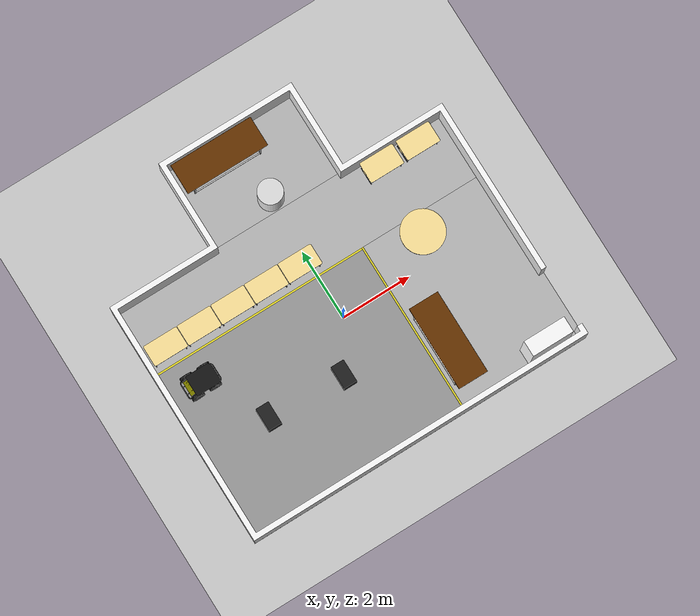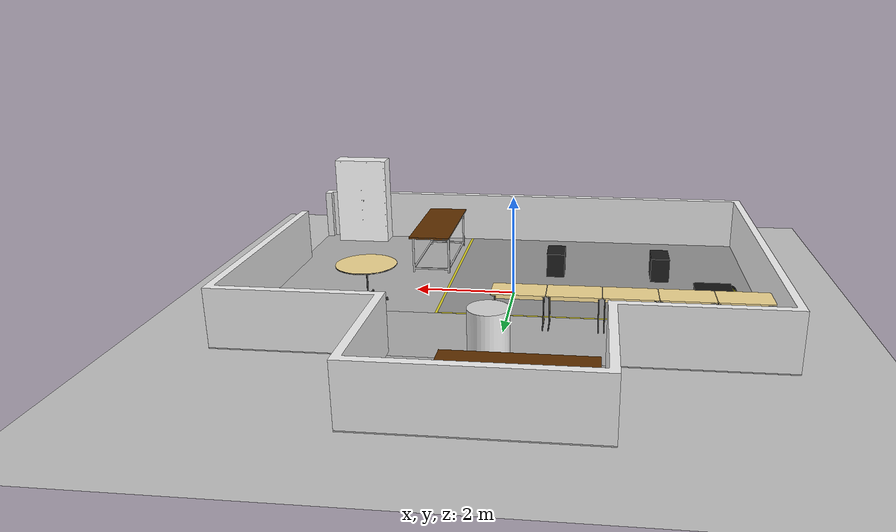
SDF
<sdf version="1.7">
 <world name="default">
  <light name="sun" type="directional">
   <cast_shadows>0</cast_shadows>
   <pose>0 0 10 0 -0 0</pose>
   <diffuse>0.8 0.8 0.8 1</diffuse>
   <specular>0.1 0.1 0.1 1</specular>
   <attenuation>
    <range>1000</range>
    <constant>0.9</constant>
    <linear>0.01</linear>
    <quadratic>0.001</quadratic>
   </attenuation>
   <direction>-0.5 0.5 -1</direction>
   <spot><inner_angle>0</inner_angle><outer_angle>0</outer_angle><falloff>0</falloff></spot>
  </light>
  <model name="ground_plane">
   <static>1</static>
   <link name="link">
    <collision name="collision">
     <geometry><plane><normal>0 0 1</normal><size>100 100</size></plane></geometry>
     <surface><friction><ode><mu>1</mu><mu2>2</mu2></ode></friction></surface>
    </collision>
    <visual name="visual">
     <cast_shadows>0</cast_shadows>
     <geometry><plane><normal>0 0 1</normal><size>100 100</size></plane></geometry>
     <material>
      <script><uri>file://media/materials/scripts/gazebo.material</uri><name>Gazebo/Grey</name></script>
     </material>
    </visual>
   </link>
  </model>
  <gravity>0 0 -9.8</gravity>
  <magnetic_field>6e-06 2.3e-05 -4.2e-05</magnetic_field>
  <atmosphere type="adiabatic"/>
  <physics name="default_physics" default="0" type="ode">
   <max_step_size>0.01</max_step_size>
   <real_time_factor>1</real_time_factor>
   <real_time_update_rate>100</real_time_update_rate>
  </physics>
  <scene><ambient>0.4 0.4 0.4 1</ambient><background>0.7 0.7 0.7 1</background><shadows>0</shadows></scene>
  <spherical_coordinates>
   <surface_model>EARTH_WGS84</surface_model>
   <latitude_deg>0</latitude_deg>
   <longitude_deg>0</longitude_deg>
   <elevation>0</elevation>
   <heading_deg>0</heading_deg>
  </spherical_coordinates>
  <model name="lar_floor">
   <pose>0 -0.25 0 0 -0 0</pose>
   <frame name="floor::__model__" attached_to="floor::floor">
    <pose relative_to="__model__">0 0 0 0 -0 0</pose>
   </frame>
   <link name="floor::floor">
    <pose relative_to="floor::__model__">0 0 0 0 -0 0</pose>
    <visual name="visual_1">
     <pose>3.2 -0.985 0.01 0 -0 0</pose>
     <geometry><box><size>3.6 5.03 0.02</size></box></geometry>
     <material>
      <script>
       <uri>model://lar_floor/materials/scripts/lar_floor.material</uri>
       <name>lar_floor/visual_1</name>
      </script>
     </material>
     <cast_shadows>0</cast_shadows>
    </visual>
    <visual name="visual_2">
     <pose>0 4.75 0.01 0 -0 0</pose>
     <geometry><box><size>4 2.5 0.02</size></box></geometry>
     <material>
      <script>
       <uri>model://lar_floor/materials/scripts/lar_floor.material</uri>
       <name>lar_floor/visual_2</name>
      </script>
     </material>
     <cast_shadows>0</cast_shadows>
    </visual>
    <visual name="visual_3">
     <pose>-1.825 -1.01 0.01 0 -0 0</pose>
     <geometry><box><size>6.35 4.98 0.02</size></box></geometry>
     <material>
      <script><uri>file://media/materials/scripts/gazebo.material</uri><name>Gazebo/Grey</name></script>
     </material>
     <cast_shadows>0</cast_shadows>
    </visual>
    <visual name="visual_4">
     <pose>1.375 -0.985 0.01 0 -0 0</pose>
     <geometry><box><size>0.05 5.03 0.02</size></box></geometry>
     <material>
      <script><uri>file://media/materials/scripts/gazebo.material</uri><name>Gazebo/DarkYellow</name></script>
     </material>
     <cast_shadows>0</cast_shadows>
    </visual>
    <visual name="visual_5">
     <pose>-1.825 1.505 0.01 0 -0 0</pose>
     <geometry><box><size>6.35 0.05 0.02</size></box></geometry>
     <material>
      <script><uri>file://media/materials/scripts/gazebo.material</uri><name>Gazebo/DarkYellow</name></script>
     </material>
     <cast_shadows>0</cast_shadows>
    </visual>
    <visual name="visual_6">
     <pose>0 2.515 0.01 0 -0 0</pose>
     <geometry><box><size>10 1.97 0.02</size></box></geometry>
     <material>
      <script>
       <uri>model://lar_floor/materials/scripts/lar_floor.material</uri>
       <name>lar_floor/visual_6</name>
      </script>
     </material>
     <cast_shadows>0</cast_shadows>
    </visual>
    <collision name="collision_1">
     <pose>0 0 0.01 0 -0 0</pose>
     <geometry><box><size>10 7 0.1</size></box></geometry>
     <surface><friction><ode><mu>1000000</mu><mu2>1000000</mu2></ode></friction></surface>
    </collision>
    <collision name="collision_2">
     <pose>0 4.75 0.01 0 -0 0</pose>
     <geometry><box><size>4 2.5 0.1</size></box></geometry>
     <surface><friction><ode><mu>1000000</mu><mu2>1000000</mu2></ode></friction></surface>
    </collision>
   </link>
   <static>1</static>
  </model>
  <model name="lar_walls">
   <pose>0 1 0 0 -0 0</pose>
   <frame name="walls::__model__" attached_to="walls::walls">
    <pose relative_to="__model__">0 0 0 0 -0 0</pose>
   </frame>
   <link name="walls::walls">
    <pose relative_to="walls::__model__">0 0 1.52 0 -0 0</pose>
    <inertial>
     <inertia><ixx>1</ixx><ixy>0</ixy><ixz>0</ixz><iyy>1</iyy><iyz>0</iyz><izz>1</izz></inertia>
     <mass>2000</mass>
    </inertial>
    <visual name="visual">
     <geometry><mesh><uri>model://lar_walls/meshes/lar_walls.dae</uri></mesh></geometry>
     <cast_shadows>0</cast_shadows>
     <material><shader type="vertex"><normal_map>__default__</normal_map></shader></material>
    </visual>
    <collision name="collisions">
     <geometry><mesh><uri>model://lar_walls/meshes/lar_walls.dae</uri></mesh></geometry>
     <surface>
      <friction>
       <ode><mu>1</mu><mu2>1</mu2><fdir1>0 0 0</fdir1><slip1>0</slip1><slip2>0</slip2></ode>
       <torsional>
        <coefficient>1</coefficient>
        <patch_radius>0</patch_radius>
        <surface_radius>0</surface_radius>
        <use_patch_radius>1</use_patch_radius>
        <ode><slip>0</slip></ode>
       </torsional>
      </friction>
      <bounce><restitution_coefficient>0</restitution_coefficient><threshold>1e+06</threshold></bounce>
      <contact>
       <collide_without_contact>0</collide_without_contact>
       <collide_without_contact_bitmask>1</collide_without_contact_bitmask>
       <collide_bitmask>1</collide_bitmask>
       <ode>
        <soft_cfm>0</soft_cfm>
        <soft_erp>0.2</soft_erp>
        <kp>1e+13</kp>
        <kd>1</kd>
        <max_vel>0.01</max_vel>
        <min_depth>0</min_depth>
       </ode>
       <bullet>
        <split_impulse>1</split_impulse>
        <split_impulse_penetration_threshold>-0.01</split_impulse_penetration_threshold>
        <soft_cfm>0</soft_cfm>
        <soft_erp>0.2</soft_erp>
        <kp>1e+13</kp>
        <kd>1</kd>
       </bullet>
      </contact>
     </surface>
    </collision>
   </link>
   <static>1</static>
  </model>
  <model name="lar_shelf">
   <pose>4 -3.35 -0 0 -0 1.57068</pose>
   <frame name="shelf::__model__" attached_to="shelf::shelf">
    <pose relative_to="__model__">0 0 0 0 -0 0</pose>
   </frame>
   <link name="shelf::shelf">
    <pose relative_to="shelf::__model__">0 0 1.01 0 -0 0</pose>
    <inertial>
     <inertia><ixx>1</ixx><ixy>0</ixy><ixz>0</ixz><iyy>1</iyy><iyz>0</iyz><izz>1</izz></inertia>
     <mass>20</mass>
    </inertial>
    <visual name="visual">
     <geometry><mesh><uri>model://lar_shelf/meshes/lar_shelf.dae</uri></mesh></geometry>
     <cast_shadows>0</cast_shadows>
     <material>
      <lighting>1</lighting>
      <ambient>1 1 1 1</ambient>
      <diffuse>1 1 1 1</diffuse>
      <specular>1 1 1 1</specular>
      <emissive>0 0 0 1</emissive>
      <shader type="vertex"><normal_map>__default__</normal_map></shader>
     </material>
    </visual>
    <collision name="collisions">
     <geometry><box><size>0.454 1.2 1.98</size></box></geometry>
     <surface>
      <friction>
       <ode><mu>1</mu><mu2>1</mu2><fdir1>0 0 0</fdir1><slip1>0</slip1><slip2>0</slip2></ode>
       <torsional>
        <coefficient>1</coefficient>
        <patch_radius>0</patch_radius>
        <surface_radius>0</surface_radius>
        <use_patch_radius>1</use_patch_radius>
        <ode><slip>0</slip></ode>
       </torsional>
      </friction>
      <bounce><restitution_coefficient>0</restitution_coefficient><threshold>1e+06</threshold></bounce>
      <contact>
       <collide_without_contact>0</collide_without_contact>
       <collide_without_contact_bitmask>1</collide_without_contact_bitmask>
       <collide_bitmask>1</collide_bitmask>
       <ode>
        <soft_cfm>0</soft_cfm>
        <soft_erp>0.2</soft_erp>
        <kp>1e+13</kp>
        <kd>1</kd>
        <max_vel>0.01</max_vel>
        <min_depth>0</min_depth>
       </ode>
       <bullet>
        <split_impulse>1</split_impulse>
        <split_impulse_penetration_threshold>-0.01</split_impulse_penetration_threshold>
        <soft_cfm>0</soft_cfm>
        <soft_erp>0.2</soft_erp>
        <kp>1e+13</kp>
        <kd>1</kd>
       </bullet>
      </contact>
     </surface>
    </collision>
   </link>
   <static>1</static>
  </model>
  <model name="lar_table_great_0">
   <pose>1.9 -2 0 0 -0 0</pose>
   <frame name="great_table_0::__model__" attached_to="great_table_0::great_table">
    <pose relative_to="__model__">0 0 0 0 -0 0</pose>
   </frame>
   <link name="great_table_0::great_table">
    <pose relative_to="great_table_0::__model__">0 0 0.445 0 -0 0</pose>
    <inertial>
     <inertia><ixx>1</ixx><ixy>0</ixy><ixz>0</ixz><iyy>1</iyy><iyz>0</iyz><izz>1</izz></inertia>
     <mass>25</mass>
    </inertial>
    <visual name="visual">
     <geometry><mesh><uri>model://lar_table_great/meshes/lar_table_great.dae</uri></mesh></geometry>
     <cast_shadows>0</cast_shadows>
     <material><shader type="vertex"><normal_map>__default__</normal_map></shader></material>
    </visual>
    <collision name="collisions">
     <geometry><mesh><uri>model://lar_table_great/meshes/lar_table_great.dae</uri></mesh></geometry>
     <surface>
      <friction>
       <ode><mu>1</mu><mu2>1</mu2><fdir1>0 0 0</fdir1><slip1>0</slip1><slip2>0</slip2></ode>
       <torsional>
        <coefficient>1</coefficient>
        <patch_radius>0</patch_radius>
        <surface_radius>0</surface_radius>
        <use_patch_radius>1</use_patch_radius>
        <ode><slip>0</slip></ode>
       </torsional>
      </friction>
      <bounce><restitution_coefficient>0</restitution_coefficient><threshold>1e+06</threshold></bounce>
      <contact>
       <collide_without_contact>0</collide_without_contact>
       <collide_without_contact_bitmask>1</collide_without_contact_bitmask>
       <collide_bitmask>1</collide_bitmask>
       <ode>
        <soft_cfm>0</soft_cfm>
        <soft_erp>0.2</soft_erp>
        <kp>1e+13</kp>
        <kd>1</kd>
        <max_vel>0.01</max_vel>
        <min_depth>0</min_depth>
       </ode>
       <bullet>
        <split_impulse>1</split_impulse>
        <split_impulse_penetration_threshold>-0.01</split_impulse_penetration_threshold>
        <soft_cfm>0</soft_cfm>
        <soft_erp>0.2</soft_erp>
        <kp>1e+13</kp>
        <kd>1</kd>
       </bullet>
      </contact>
     </surface>
    </collision>
   </link>
   <static>1</static>
  </model>
  <model name="lar_table_great_1">
   <pose>-0.55 5.15 -0 0 -0 1.5708</pose>
   <frame name="great_table_1::__model__" attached_to="great_table_1::great_table">
    <pose relative_to="__model__">0 0 0 0 -0 0</pose>
   </frame>
   <link name="great_table_1::great_table">
    <pose relative_to="great_table_1::__model__">0 0 0.445 0 -0 0</pose>
    <inertial>
     <inertia><ixx>1</ixx><ixy>0</ixy><ixz>0</ixz><iyy>1</iyy><iyz>0</iyz><izz>1</izz></inertia>
     <mass>25</mass>
    </inertial>
    <visual name="visual">
     <geometry><mesh><uri>model://lar_table_great/meshes/lar_table_great.dae</uri></mesh></geometry>
     <cast_shadows>0</cast_shadows>
     <material><shader type="vertex"><normal_map>__default__</normal_map></shader></material>
    </visual>
    <collision name="collisions">
     <geometry><mesh><uri>model://lar_table_great/meshes/lar_table_great.dae</uri></mesh></geometry>
     <surface>
      <friction>
       <ode><mu>1</mu><mu2>1</mu2><fdir1>0 0 0</fdir1><slip1>0</slip1><slip2>0</slip2></ode>
       <torsional>
        <coefficient>1</coefficient>
        <patch_radius>0</patch_radius>
        <surface_radius>0</surface_radius>
        <use_patch_radius>1</use_patch_radius>
        <ode><slip>0</slip></ode>
       </torsional>
      </friction>
      <bounce><restitution_coefficient>0</restitution_coefficient><threshold>1e+06</threshold></bounce>
      <contact>
       <collide_without_contact>0</collide_without_contact>
       <collide_without_contact_bitmask>1</collide_without_contact_bitmask>
       <collide_bitmask>1</collide_bitmask>
       <ode>
        <soft_cfm>0</soft_cfm>
        <soft_erp>0.2</soft_erp>
        <kp>1e+13</kp>
        <kd>1</kd>
        <max_vel>0.01</max_vel>
        <min_depth>0</min_depth>
       </ode>
       <bullet>
        <split_impulse>1</split_impulse>
        <split_impulse_penetration_threshold>-0.01</split_impulse_penetration_threshold>
        <soft_cfm>0</soft_cfm>
        <soft_erp>0.2</soft_erp>
        <kp>1e+13</kp>
        <kd>1</kd>
       </bullet>
      </contact>
     </surface>
    </collision>
   </link>
   <static>1</static>
  </model>
  <model name="lar_table_pc_0">
   <pose>-4.3 1.68 0 0 -0 0</pose>
   <frame name="pc_table_0::__model__" attached_to="pc_table_0::pc_table">
    <pose relative_to="__model__">0 0 0 0 -0 0</pose>
   </frame>
   <link name="pc_table_0::pc_table">
    <pose relative_to="pc_table_0::__model__">0 0 0.37 0 -0 0</pose>
    <inertial>
     <inertia><ixx>1</ixx><ixy>0</ixy><ixz>0</ixz><iyy>1</iyy><iyz>0</iyz><izz>1</izz></inertia>
     <mass>12</mass>
    </inertial>
    <visual name="visual">
     <geometry><mesh><uri>model://lar_table_pc/meshes/lar_table_pc.dae</uri></mesh></geometry>
     <cast_shadows>0</cast_shadows>
     <material><shader type="vertex"><normal_map>__default__</normal_map></shader></material>
    </visual>
    <collision name="collisions">
     <geometry><mesh><uri>model://lar_table_pc/meshes/lar_table_pc.dae</uri></mesh></geometry>
     <surface>
      <friction>
       <ode><mu>1</mu><mu2>1</mu2><fdir1>0 0 0</fdir1><slip1>0</slip1><slip2>0</slip2></ode>
       <torsional>
        <coefficient>1</coefficient>
        <patch_radius>0</patch_radius>
        <surface_radius>0</surface_radius>
        <use_patch_radius>1</use_patch_radius>
        <ode><slip>0</slip></ode>
       </torsional>
      </friction>
      <bounce><restitution_coefficient>0</restitution_coefficient><threshold>1e+06</threshold></bounce>
      <contact>
       <collide_without_contact>0</collide_without_contact>
       <collide_without_contact_bitmask>1</collide_without_contact_bitmask>
       <collide_bitmask>1</collide_bitmask>
       <ode>
        <soft_cfm>0</soft_cfm>
        <soft_erp>0.2</soft_erp>
        <kp>1e+13</kp>
        <kd>1</kd>
        <max_vel>0.01</max_vel>
        <min_depth>0</min_depth>
       </ode>
       <bullet>
        <split_impulse>1</split_impulse>
        <split_impulse_penetration_threshold>-0.01</split_impulse_penetration_threshold>
        <soft_cfm>0</soft_cfm>
        <soft_erp>0.2</soft_erp>
        <kp>1e+13</kp>
        <kd>1</kd>
       </bullet>
      </contact>
     </surface>
    </collision>
   </link>
   <static>1</static>
  </model>
  <model name="lar_table_pc_1">
   <pose>-3.29 1.68 0 0 -0 0</pose>
   <frame name="pc_table_1::__model__" attached_to="pc_table_1::pc_table">
    <pose relative_to="__model__">0 0 0 0 -0 0</pose>
   </frame>
   <link name="pc_table_1::pc_table">
    <pose relative_to="pc_table_1::__model__">0 0 0.37 0 -0 0</pose>
    <inertial>
     <inertia><ixx>1</ixx><ixy>0</ixy><ixz>0</ixz><iyy>1</iyy><iyz>0</iyz><izz>1</izz></inertia>
     <mass>12</mass>
    </inertial>
    <visual name="visual">
     <geometry><mesh><uri>model://lar_table_pc/meshes/lar_table_pc.dae</uri></mesh></geometry>
     <cast_shadows>0</cast_shadows>
     <material><shader type="vertex"><normal_map>__default__</normal_map></shader></material>
    </visual>
    <collision name="collisions">
     <geometry><mesh><uri>model://lar_table_pc/meshes/lar_table_pc.dae</uri></mesh></geometry>
     <surface>
      <friction>
       <ode><mu>1</mu><mu2>1</mu2><fdir1>0 0 0</fdir1><slip1>0</slip1><slip2>0</slip2></ode>
       <torsional>
        <coefficient>1</coefficient>
        <patch_radius>0</patch_radius>
        <surface_radius>0</surface_radius>
        <use_patch_radius>1</use_patch_radius>
        <ode><slip>0</slip></ode>
       </torsional>
      </friction>
      <bounce><restitution_coefficient>0</restitution_coefficient><threshold>1e+06</threshold></bounce>
      <contact>
       <collide_without_contact>0</collide_without_contact>
       <collide_without_contact_bitmask>1</collide_without_contact_bitmask>
       <collide_bitmask>1</collide_bitmask>
       <ode>
        <soft_cfm>0</soft_cfm>
        <soft_erp>0.2</soft_erp>
        <kp>1e+13</kp>
        <kd>1</kd>
        <max_vel>0.01</max_vel>
        <min_depth>0</min_depth>
       </ode>
       <bullet>
        <split_impulse>1</split_impulse>
        <split_impulse_penetration_threshold>-0.01</split_impulse_penetration_threshold>
        <soft_cfm>0</soft_cfm>
        <soft_erp>0.2</soft_erp>
        <kp>1e+13</kp>
        <kd>1</kd>
       </bullet>
      </contact>
     </surface>
    </collision>
   </link>
   <static>1</static>
  </model>
  <model name="lar_table_pc_2">
   <pose>-2.28 1.68 0 0 -0 0</pose>
   <frame name="pc_table_2::__model__" attached_to="pc_table_2::pc_table">
    <pose relative_to="__model__">0 0 0 0 -0 0</pose>
   </frame>
   <link name="pc_table_2::pc_table">
    <pose relative_to="pc_table_2::__model__">0 0 0.37 0 -0 0</pose>
    <inertial>
     <inertia><ixx>1</ixx><ixy>0</ixy><ixz>0</ixz><iyy>1</iyy><iyz>0</iyz><izz>1</izz></inertia>
     <mass>12</mass>
    </inertial>
    <visual name="visual">
     <geometry><mesh><uri>model://lar_table_pc/meshes/lar_table_pc.dae</uri></mesh></geometry>
     <cast_shadows>0</cast_shadows>
     <material><shader type="vertex"><normal_map>__default__</normal_map></shader></material>
    </visual>
    <collision name="collisions">
     <geometry><mesh><uri>model://lar_table_pc/meshes/lar_table_pc.dae</uri></mesh></geometry>
     <surface>
      <friction>
       <ode><mu>1</mu><mu2>1</mu2><fdir1>0 0 0</fdir1><slip1>0</slip1><slip2>0</slip2></ode>
       <torsional>
        <coefficient>1</coefficient>
        <patch_radius>0</patch_radius>
        <surface_radius>0</surface_radius>
        <use_patch_radius>1</use_patch_radius>
        <ode><slip>0</slip></ode>
       </torsional>
      </friction>
      <bounce><restitution_coefficient>0</restitution_coefficient><threshold>1e+06</threshold></bounce>
      <contact>
       <collide_without_contact>0</collide_without_contact>
       <collide_without_contact_bitmask>1</collide_without_contact_bitmask>
       <collide_bitmask>1</collide_bitmask>
       <ode>
        <soft_cfm>0</soft_cfm>
        <soft_erp>0.2</soft_erp>
        <kp>1e+13</kp>
        <kd>1</kd>
        <max_vel>0.01</max_vel>
        <min_depth>0</min_depth>
       </ode>
       <bullet>
        <split_impulse>1</split_impulse>
        <split_impulse_penetration_threshold>-0.01</split_impulse_penetration_threshold>
        <soft_cfm>0</soft_cfm>
        <soft_erp>0.2</soft_erp>
        <kp>1e+13</kp>
        <kd>1</kd>
       </bullet>
      </contact>
     </surface>
    </collision>
   </link>
   <static>1</static>
  </model>
  <model name="lar_table_pc_3">
   <pose>-1.27 1.68 0 0 -0 0</pose>
   <frame name="pc_table_3::__model__" attached_to="pc_table_3::pc_table">
    <pose relative_to="__model__">0 0 0 0 -0 0</pose>
   </frame>
   <link name="pc_table_3::pc_table">
    <pose relative_to="pc_table_3::__model__">0 0 0.37 0 -0 0</pose>
    <inertial>
     <inertia><ixx>1</ixx><ixy>0</ixy><ixz>0</ixz><iyy>1</iyy><iyz>0</iyz><izz>1</izz></inertia>
     <mass>12</mass>
    </inertial>
    <visual name="visual">
     <geometry><mesh><uri>model://lar_table_pc/meshes/lar_table_pc.dae</uri></mesh></geometry>
     <cast_shadows>0</cast_shadows>
     <material><shader type="vertex"><normal_map>__default__</normal_map></shader></material>
    </visual>
    <collision name="collisions">
     <geometry><mesh><uri>model://lar_table_pc/meshes/lar_table_pc.dae</uri></mesh></geometry>
     <surface>
      <friction>
       <ode><mu>1</mu><mu2>1</mu2><fdir1>0 0 0</fdir1><slip1>0</slip1><slip2>0</slip2></ode>
       <torsional>
        <coefficient>1</coefficient>
        <patch_radius>0</patch_radius>
        <surface_radius>0</surface_radius>
        <use_patch_radius>1</use_patch_radius>
        <ode><slip>0</slip></ode>
       </torsional>
      </friction>
      <bounce><restitution_coefficient>0</restitution_coefficient><threshold>1e+06</threshold></bounce>
      <contact>
       <collide_without_contact>0</collide_without_contact>
       <collide_without_contact_bitmask>1</collide_without_contact_bitmask>
       <collide_bitmask>1</collide_bitmask>
       <ode>
        <soft_cfm>0</soft_cfm>
        <soft_erp>0.2</soft_erp>
        <kp>1e+13</kp>
        <kd>1</kd>
        <max_vel>0.01</max_vel>
        <min_depth>0</min_depth>
       </ode>
       <bullet>
        <split_impulse>1</split_impulse>
        <split_impulse_penetration_threshold>-0.01</split_impulse_penetration_threshold>
        <soft_cfm>0</soft_cfm>
        <soft_erp>0.2</soft_erp>
        <kp>1e+13</kp>
        <kd>1</kd>
       </bullet>
      </contact>
     </surface>
    </collision>
   </link>
   <static>1</static>
  </model>
  <model name="lar_table_pc_4">
   <pose>-0.26 1.68 0 0 -0 0</pose>
   <frame name="pc_table_4::__model__" attached_to="pc_table_4::pc_table">
    <pose relative_to="__model__">0 0 0 0 -0 0</pose>
   </frame>
   <link name="pc_table_4::pc_table">
    <pose relative_to="pc_table_4::__model__">0 0 0.37 0 -0 0</pose>
    <inertial>
     <inertia><ixx>1</ixx><ixy>0</ixy><ixz>0</ixz><iyy>1</iyy><iyz>0</iyz><izz>1</izz></inertia>
     <mass>12</mass>
    </inertial>
    <visual name="visual">
     <geometry><mesh><uri>model://lar_table_pc/meshes/lar_table_pc.dae</uri></mesh></geometry>
     <cast_shadows>0</cast_shadows>
     <material><shader type="vertex"><normal_map>__default__</normal_map></shader></material>
    </visual>
    <collision name="collisions">
     <geometry><mesh><uri>model://lar_table_pc/meshes/lar_table_pc.dae</uri></mesh></geometry>
     <surface>
      <friction>
       <ode><mu>1</mu><mu2>1</mu2><fdir1>0 0 0</fdir1><slip1>0</slip1><slip2>0</slip2></ode>
       <torsional>
        <coefficient>1</coefficient>
        <patch_radius>0</patch_radius>
        <surface_radius>0</surface_radius>
        <use_patch_radius>1</use_patch_radius>
        <ode><slip>0</slip></ode>
       </torsional>
      </friction>
      <bounce><restitution_coefficient>0</restitution_coefficient><threshold>1e+06</threshold></bounce>
      <contact>
       <collide_without_contact>0</collide_without_contact>
       <collide_without_contact_bitmask>1</collide_without_contact_bitmask>
       <collide_bitmask>1</collide_bitmask>
       <ode>
        <soft_cfm>0</soft_cfm>
        <soft_erp>0.2</soft_erp>
        <kp>1e+13</kp>
        <kd>1</kd>
        <max_vel>0.01</max_vel>
        <min_depth>0</min_depth>
       </ode>
       <bullet>
        <split_impulse>1</split_impulse>
        <split_impulse_penetration_threshold>-0.01</split_impulse_penetration_threshold>
        <soft_cfm>0</soft_cfm>
        <soft_erp>0.2</soft_erp>
        <kp>1e+13</kp>
        <kd>1</kd>
       </bullet>
      </contact>
     </surface>
    </collision>
   </link>
   <static>1</static>
  </model>
  <model name="lar_table_pc_5">
   <pose>4 2.8 0 0 0 -3.14159</pose>
   <frame name="pc_table_5::__model__" attached_to="pc_table_5::pc_table">
    <pose relative_to="__model__">0 0 0 0 -0 0</pose>
   </frame>
   <link name="pc_table_5::pc_table">
    <pose relative_to="pc_table_5::__model__">0 0 0.37 0 -0 0</pose>
    <inertial>
     <inertia><ixx>1</ixx><ixy>0</ixy><ixz>0</ixz><iyy>1</iyy><iyz>0</iyz><izz>1</izz></inertia>
     <mass>12</mass>
    </inertial>
    <visual name="visual">
     <geometry><mesh><uri>model://lar_table_pc/meshes/lar_table_pc.dae</uri></mesh></geometry>
     <cast_shadows>0</cast_shadows>
     <material><shader type="vertex"><normal_map>__default__</normal_map></shader></material>
    </visual>
    <collision name="collisions">
     <geometry><mesh><uri>model://lar_table_pc/meshes/lar_table_pc.dae</uri></mesh></geometry>
     <surface>
      <friction>
       <ode><mu>1</mu><mu2>1</mu2><fdir1>0 0 0</fdir1><slip1>0</slip1><slip2>0</slip2></ode>
       <torsional>
        <coefficient>1</coefficient>
        <patch_radius>0</patch_radius>
        <surface_radius>0</surface_radius>
        <use_patch_radius>1</use_patch_radius>
        <ode><slip>0</slip></ode>
       </torsional>
      </friction>
      <bounce><restitution_coefficient>0</restitution_coefficient><threshold>1e+06</threshold></bounce>
      <contact>
       <collide_without_contact>0</collide_without_contact>
       <collide_without_contact_bitmask>1</collide_without_contact_bitmask>
       <collide_bitmask>1</collide_bitmask>
       <ode>
        <soft_cfm>0</soft_cfm>
        <soft_erp>0.2</soft_erp>
        <kp>1e+13</kp>
        <kd>1</kd>
        <max_vel>0.01</max_vel>
        <min_depth>0</min_depth>
       </ode>
       <bullet>
        <split_impulse>1</split_impulse>
        <split_impulse_penetration_threshold>-0.01</split_impulse_penetration_threshold>
        <soft_cfm>0</soft_cfm>
        <soft_erp>0.2</soft_erp>
        <kp>1e+13</kp>
        <kd>1</kd>
       </bullet>
      </contact>
     </surface>
    </collision>
   </link>
   <static>1</static>
  </model>
  <model name="lar_table_pc_6">
   <pose>2.9 2.8 0 0 -0 3.14159</pose>
   <frame name="pc_table_6::__model__" attached_to="pc_table_6::pc_table">
    <pose relative_to="__model__">0 0 0 0 -0 0</pose>
   </frame>
   <link name="pc_table_6::pc_table">
    <pose relative_to="pc_table_6::__model__">0 0 0.37 0 -0 0</pose>
    <inertial>
     <inertia><ixx>1</ixx><ixy>0</ixy><ixz>0</ixz><iyy>1</iyy><iyz>0</iyz><izz>1</izz></inertia>
     <mass>12</mass>
    </inertial>
    <visual name="visual">
     <geometry><mesh><uri>model://lar_table_pc/meshes/lar_table_pc.dae</uri></mesh></geometry>
     <cast_shadows>0</cast_shadows>
     <material><shader type="vertex"><normal_map>__default__</normal_map></shader></material>
    </visual>
    <collision name="collisions">
     <geometry><mesh><uri>model://lar_table_pc/meshes/lar_table_pc.dae</uri></mesh></geometry>
     <surface>
      <friction>
       <ode><mu>1</mu><mu2>1</mu2><fdir1>0 0 0</fdir1><slip1>0</slip1><slip2>0</slip2></ode>
       <torsional>
        <coefficient>1</coefficient>
        <patch_radius>0</patch_radius>
        <surface_radius>0</surface_radius>
        <use_patch_radius>1</use_patch_radius>
        <ode><slip>0</slip></ode>
       </torsional>
      </friction>
      <bounce><restitution_coefficient>0</restitution_coefficient><threshold>1e+06</threshold></bounce>
      <contact>
       <collide_without_contact>0</collide_without_contact>
       <collide_without_contact_bitmask>1</collide_without_contact_bitmask>
       <collide_bitmask>1</collide_bitmask>
       <ode>
        <soft_cfm>0</soft_cfm>
        <soft_erp>0.2</soft_erp>
        <kp>1e+13</kp>
        <kd>1</kd>
        <max_vel>0.01</max_vel>
        <min_depth>0</min_depth>
       </ode>
       <bullet>
        <split_impulse>1</split_impulse>
        <split_impulse_penetration_threshold>-0.01</split_impulse_penetration_threshold>
        <soft_cfm>0</soft_cfm>
        <soft_erp>0.2</soft_erp>
        <kp>1e+13</kp>
        <kd>1</kd>
       </bullet>
      </contact>
     </surface>
    </collision>
   </link>
   <static>1</static>
  </model>
  <model name="lar_table_circular">
   <pose>2.84873 0.721151 0 0 -0 0</pose>
   <frame name="circular_table::__model__" attached_to="circular_table::circular_table">
    <pose relative_to="__model__">0 0 0 0 -0 0</pose>
   </frame>
   <link name="circular_table::circular_table">
    <pose relative_to="circular_table::__model__">0 0 0.388 0 -0 0</pose>
    <inertial>
     <inertia><ixx>1</ixx><ixy>0</ixy><ixz>0</ixz><iyy>1</iyy><iyz>0</iyz><izz>1</izz></inertia>
     <mass>5</mass>
    </inertial>
    <visual name="visual">
     <geometry><mesh><uri>model://lar_table_circular/meshes/lar_table_circular.dae</uri></mesh></geometry>
     <cast_shadows>0</cast_shadows>
     <material><shader type="vertex"><normal_map>__default__</normal_map></shader></material>
    </visual>
    <collision name="collisions">
     <geometry><mesh><uri>model://lar_table_circular/meshes/lar_table_circular.dae</uri></mesh></geometry>
     <surface>
      <friction>
       <ode><mu>1</mu><mu2>1</mu2><fdir1>0 0 0</fdir1><slip1>0</slip1><slip2>0</slip2></ode>
       <torsional>
        <coefficient>1</coefficient>
        <patch_radius>0</patch_radius>
        <surface_radius>0</surface_radius>
        <use_patch_radius>1</use_patch_radius>
        <ode><slip>0</slip></ode>
       </torsional>
      </friction>
      <bounce><restitution_coefficient>0</restitution_coefficient><threshold>1e+06</threshold></bounce>
      <contact>
       <collide_without_contact>0</collide_without_contact>
       <collide_without_contact_bitmask>1</collide_without_contact_bitmask>
       <collide_bitmask>1</collide_bitmask>
       <ode>
        <soft_cfm>0</soft_cfm>
        <soft_erp>0.2</soft_erp>
        <kp>1e+13</kp>
        <kd>1</kd>
        <max_vel>0.01</max_vel>
        <min_depth>0</min_depth>
       </ode>
       <bullet>
        <split_impulse>1</split_impulse>
        <split_impulse_penetration_threshold>-0.01</split_impulse_penetration_threshold>
        <soft_cfm>0</soft_cfm>
        <soft_erp>0.2</soft_erp>
        <kp>1e+13</kp>
        <kd>1</kd>
       </bullet>
      </contact>
     </surface>
    </collision>
   </link>
   <static>1</static>
  </model>
  <model name="box_0">
   <pose>-0.8 -1.3 0 0 -0 1.5708</pose>
   <frame name="box_0::__model__" attached_to="box_0::link">
    <pose relative_to="__model__">0 0 0 0 -0 0</pose>
   </frame>
   <static>1</static>
   <link name="box_0::link">
    <pose relative_to="box_0::__model__">0 0 0.28 0 -0 0</pose>
    <collision name="collision"><geometry><box><size>0.65 0.38 0.5</size></box></geometry></collision>
    <visual name="visual">
     <cast_shadows>0</cast_shadows>
     <geometry><box><size>0.65 0.38 0.5</size></box></geometry>
     <material>
      <script><uri>file://media/materials/scripts/gazebo.material</uri><name>Gazebo/Black</name></script>
     </material>
    </visual>
   </link>
  </model>
  <model name="box_1">
   <pose>-3 -1.2 0 0 -0 1.5708</pose>
   <frame name="box_1::__model__" attached_to="box_1::link">
    <pose relative_to="__model__">0 0 0 0 -0 0</pose>
   </frame>
   <static>1</static>
   <link name="box_1::link">
    <pose relative_to="box_1::__model__">0 0 0.28 0 -0 0</pose>
    <collision name="collision"><geometry><box><size>0.65 0.38 0.5</size></box></geometry></collision>
    <visual name="visual">
     <cast_shadows>0</cast_shadows>
     <geometry><box><size>0.65 0.38 0.5</size></box></geometry>
     <material>
      <script><uri>file://media/materials/scripts/gazebo.material</uri><name>Gazebo/Black</name></script>
     </material>
    </visual>
   </link>
  </model>
  <model name="husky">
   <link name="base_link">
    <inertial>
     <pose>-0.00065 -0.085 0.062 0 -0 0</pose>
     <mass>46.034</mass>
     <inertia>
      <ixx>0.6022</ixx>
      <ixy>-0.02364</ixy>
      <ixz>-0.1197</ixz>
      <iyy>1.7386</iyy>
      <iyz>-0.001544</iyz>
      <izz>2.0296</izz>
     </inertia>
    </inertial>
    <collision name="base_link_collision">
     <pose>0 0 0.061875 0 -0 0</pose>
     <geometry><box><size>0.9874 0.5709 0.12375</size></box></geometry>
    </collision>
    <collision name="base_link_collision_1">
     <pose>0 0 0.175625 0 -0 0</pose>
     <geometry><box><size>0.78992 0.5709 0.10375</size></box></geometry>
    </collision>
    <collision name="base_link_fixed_joint_lump__top_plate_link_collision_2">
     <pose>0.0812 0 0.245 0 -0 0</pose>
     <geometry>
      <mesh><scale>1 1 1</scale><uri>/opt/ros/noetic/share/husky_description/meshes/top_plate.stl</uri></mesh>
     </geometry>
    </collision>
    <visual name="base_link_visual">
     <geometry>
      <mesh><scale>1 1 1</scale><uri>/opt/ros/noetic/share/husky_description/meshes/base_link.dae</uri></mesh>
     </geometry>
    </visual>
    <visual name="base_link_fixed_joint_lump__front_bumper_link_visual_1">
     <pose>0.48 0 0.091 0 -0 0</pose>
     <geometry>
      <mesh><scale>1 1 1</scale><uri>/opt/ros/noetic/share/husky_description/meshes/bumper.dae</uri></mesh>
     </geometry>
    </visual>
    <visual name="base_link_fixed_joint_lump__rear_bumper_link_visual_2">
     <pose>-0.48 0 0.091 0 -0 3.14159</pose>
     <geometry>
      <mesh><scale>1 1 1</scale><uri>/opt/ros/noetic/share/husky_description/meshes/bumper.dae</uri></mesh>
     </geometry>
    </visual>
    <visual name="base_link_fixed_joint_lump__top_chassis_link_visual_3">
     <geometry>
      <mesh><scale>1 1 1</scale><uri>/opt/ros/noetic/share/husky_description/meshes/top_chassis.dae</uri></mesh>
     </geometry>
    </visual>
    <visual name="base_link_fixed_joint_lump__top_plate_link_visual_4">
     <pose>0.0812 0 0.245 0 -0 0</pose>
     <geometry>
      <mesh><scale>1 1 1</scale><uri>/opt/ros/noetic/share/husky_description/meshes/top_plate.dae</uri></mesh>
     </geometry>
    </visual>
    <visual name="base_link_fixed_joint_lump__user_rail_link_visual_5">
     <pose>0.272 0 0.245 0 -0 0</pose>
     <geometry>
      <mesh><scale>1 1 1</scale><uri>/opt/ros/noetic/share/husky_description/meshes/user_rail.dae</uri></mesh>
     </geometry>
    </visual>
   </link>
   <joint name="front_left_wheel" type="revolute">
    <pose relative_to="base_link">0.256 0.2854 0.03282 0 -0 0</pose>
    <parent>base_link</parent>
    <child>front_left_wheel_link</child>
    <axis>
     <xyz>0 1 0</xyz>
     <limit><lower>-1e+16</lower><upper>1e+16</upper></limit>
     <dynamics><spring_reference>0</spring_reference><spring_stiffness>0</spring_stiffness></dynamics>
    </axis>
   </joint>
   <link name="front_left_wheel_link">
    <pose relative_to="front_left_wheel">0 0 0 0 -0 0</pose>
    <inertial>
     <mass>2.637</mass>
     <inertia><ixx>0.02467</ixx><ixy>0</ixy><ixz>0</ixz><iyy>0.04411</iyy><iyz>0</iyz><izz>0.02467</izz></inertia>
    </inertial>
    <collision name="front_left_wheel_link_collision">
     <pose>0 0 0 1.57079 -0 0</pose>
     <geometry><cylinder><length>0.1143</length><radius>0.1651</radius></cylinder></geometry>
     <surface>
      <contact><ode><kp>1e+07</kp><kd>1</kd></ode></contact>
      <friction><ode><mu>1</mu><mu2>1</mu2><fdir1>1 0 0</fdir1></ode></friction>
     </surface>
    </collision>
    <visual name="front_left_wheel_link_visual">
     <geometry>
      <mesh><scale>1 1 1</scale><uri>/opt/ros/noetic/share/husky_description/meshes/wheel.dae</uri></mesh>
     </geometry>
    </visual>
   </link>
   <joint name="front_right_wheel" type="revolute">
    <pose relative_to="base_link">0.256 -0.2854 0.03282 0 -0 0</pose>
    <parent>base_link</parent>
    <child>front_right_wheel_link</child>
    <axis>
     <xyz>0 1 0</xyz>
     <limit><lower>-1e+16</lower><upper>1e+16</upper></limit>
     <dynamics><spring_reference>0</spring_reference><spring_stiffness>0</spring_stiffness></dynamics>
    </axis>
   </joint>
   <link name="front_right_wheel_link">
    <pose relative_to="front_right_wheel">0 0 0 0 -0 0</pose>
    <inertial>
     <mass>2.637</mass>
     <inertia><ixx>0.02467</ixx><ixy>0</ixy><ixz>0</ixz><iyy>0.04411</iyy><iyz>0</iyz><izz>0.02467</izz></inertia>
    </inertial>
    <collision name="front_right_wheel_link_collision">
     <pose>0 0 0 1.57079 -0 0</pose>
     <geometry><cylinder><length>0.1143</length><radius>0.1651</radius></cylinder></geometry>
     <surface>
      <contact><ode><kp>1e+07</kp><kd>1</kd></ode></contact>
      <friction><ode><mu>1</mu><mu2>1</mu2><fdir1>1 0 0</fdir1></ode></friction>
     </surface>
    </collision>
    <visual name="front_right_wheel_link_visual">
     <geometry>
      <mesh><scale>1 1 1</scale><uri>/opt/ros/noetic/share/husky_description/meshes/wheel.dae</uri></mesh>
     </geometry>
    </visual>
   </link>
   <joint name="rear_left_wheel" type="revolute">
    <pose relative_to="base_link">-0.256 0.2854 0.03282 0 -0 0</pose>
    <parent>base_link</parent>
    <child>rear_left_wheel_link</child>
    <axis>
     <xyz>0 1 0</xyz>
     <limit><lower>-1e+16</lower><upper>1e+16</upper></limit>
     <dynamics><spring_reference>0</spring_reference><spring_stiffness>0</spring_stiffness></dynamics>
    </axis>
   </joint>
   <link name="rear_left_wheel_link">
    <pose relative_to="rear_left_wheel">0 0 0 0 -0 0</pose>
    <inertial>
     <mass>2.637</mass>
     <inertia><ixx>0.02467</ixx><ixy>0</ixy><ixz>0</ixz><iyy>0.04411</iyy><iyz>0</iyz><izz>0.02467</izz></inertia>
    </inertial>
    <collision name="rear_left_wheel_link_collision">
     <pose>0 0 0 1.57079 -0 0</pose>
     <geometry><cylinder><length>0.1143</length><radius>0.1651</radius></cylinder></geometry>
     <surface>
      <contact><ode><kp>1e+07</kp><kd>1</kd></ode></contact>
      <friction><ode><mu>1</mu><mu2>1</mu2><fdir1>1 0 0</fdir1></ode></friction>
     </surface>
    </collision>
    <visual name="rear_left_wheel_link_visual">
     <geometry>
      <mesh><scale>1 1 1</scale><uri>/opt/ros/noetic/share/husky_description/meshes/wheel.dae</uri></mesh>
     </geometry>
    </visual>
   </link>
   <joint name="rear_right_wheel" type="revolute">
    <pose relative_to="base_link">-0.256 -0.2854 0.03282 0 -0 0</pose>
    <parent>base_link</parent>
    <child>rear_right_wheel_link</child>
    <axis>
     <xyz>0 1 0</xyz>
     <limit><lower>-1e+16</lower><upper>1e+16</upper></limit>
     <dynamics><spring_reference>0</spring_reference><spring_stiffness>0</spring_stiffness></dynamics>
    </axis>
   </joint>
   <link name="rear_right_wheel_link">
    <pose relative_to="rear_right_wheel">0 0 0 0 -0 0</pose>
    <inertial>
     <mass>2.637</mass>
     <inertia><ixx>0.02467</ixx><ixy>0</ixy><ixz>0</ixz><iyy>0.04411</iyy><iyz>0</iyz><izz>0.02467</izz></inertia>
    </inertial>
    <collision name="rear_right_wheel_link_collision">
     <pose>0 0 0 1.57079 -0 0</pose>
     <geometry><cylinder><length>0.1143</length><radius>0.1651</radius></cylinder></geometry>
     <surface>
      <contact><ode><kp>1e+07</kp><kd>1</kd></ode></contact>
      <friction><ode><mu>1</mu><mu2>1</mu2><fdir1>1 0 0</fdir1></ode></friction>
     </surface>
    </collision>
    <visual name="rear_right_wheel_link_visual">
     <geometry>
      <mesh><scale>1 1 1</scale><uri>/opt/ros/noetic/share/husky_description/meshes/wheel.dae</uri></mesh>
     </geometry>
    </visual>
   </link>
   <plugin name="gazebo_ros_control" filename="libgazebo_ros_control.so">
    <robotNamespace>/</robotNamespace>
    <legacyModeNS>1</legacyModeNS>
   </plugin>
   <plugin name="imu_controller" filename="libhector_gazebo_ros_imu.so">
    <robotNamespace>/</robotNamespace>
    <updateRate>50.0</updateRate>
    <bodyName>base_link</bodyName>
    <topicName>imu/data</topicName>
    <accelDrift>0.005 0.005 0.005</accelDrift>
    <accelGaussianNoise>0.005 0.005 0.005</accelGaussianNoise>
    <rateDrift>0.005 0.005 0.005</rateDrift>
    <rateGaussianNoise>0.005 0.005 0.005</rateGaussianNoise>
    <headingDrift>0.005</headingDrift>
    <headingGaussianNoise>0.005</headingGaussianNoise>
   </plugin>
   <static>0</static>
   <plugin name="gps_controller" filename="libhector_gazebo_ros_gps.so">
    <robotNamespace>/</robotNamespace>
    <updateRate>40</updateRate>
    <bodyName>base_link</bodyName>
    <frameId>base_link</frameId>
    <topicName>navsat/fix</topicName>
    <velocityTopicName>navsat/vel</velocityTopicName>
    <referenceLatitude>49.9</referenceLatitude>
    <referenceLongitude>8.9</referenceLongitude>
    <referenceHeading>0</referenceHeading>
    <referenceAltitude>0</referenceAltitude>
    <drift>0.0001 0.0001 0.0001</drift>
   </plugin>
   <pose>-3.99593 0.499737 0.192282 2.7e-05 1e-05 2e-06</pose>
  </model>
 </world>
</sdf>
